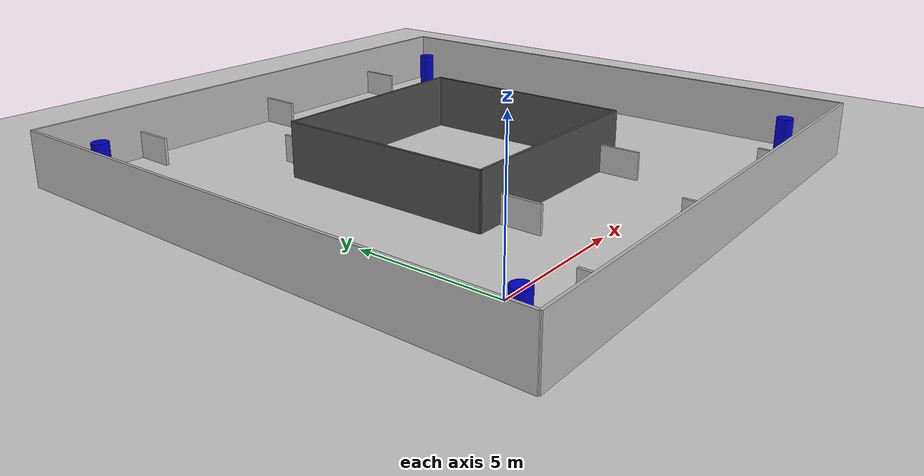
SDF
<?xml version="1.0" ?>
<sdf version="1.6">
<world name="office_loop_safe_spawn">

  <light type="directional" name="sun">
    <cast_shadows>true</cast_shadows>
    <pose>0 0 10 0 0 0</pose>
    <diffuse>0.8 0.8 0.8 1</diffuse>
    <specular>0.2 0.2 0.2 1</specular>
    <direction>-0.5 0.1 -0.9</direction>
  </light>

  <model name="ground_plane">
    <static>true</static>
    <link name="link">
      <collision name="collision">
        <geometry><plane><normal>0 0 1</normal><size>100 100</size></plane></geometry>
      </collision>
      <visual name="visual">
        <geometry><plane><normal>0 0 1</normal><size>100 100</size></plane></geometry>
        <material><ambient>0.8 0.8 0.8 1</ambient><diffuse>0.8 0.8 0.8 1</diffuse></material>
      </visual>
    </link>
  </model>

  <model name="outer_walls">
    <static>true</static>
    <pose>7 7 0 0 0 0</pose> <link name="link">
      <collision name="n"><pose>0 10 1 0 0 0</pose><geometry><box><size>20 0.1 2</size></box></geometry></collision>
      <visual name="n"><pose>0 10 1 0 0 0</pose><geometry><box><size>20 0.1 2</size></box></geometry></visual>
      <collision name="s"><pose>0 -10 1 0 0 0</pose><geometry><box><size>20 0.1 2</size></box></geometry></collision>
      <visual name="s"><pose>0 -10 1 0 0 0</pose><geometry><box><size>20 0.1 2</size></box></geometry></visual>
      <collision name="e"><pose>10 0 1 0 0 0</pose><geometry><box><size>0.1 20 2</size></box></geometry></collision>
      <visual name="e"><pose>10 0 1 0 0 0</pose><geometry><box><size>0.1 20 2</size></box></geometry></visual>
      <collision name="w"><pose>-10 0 1 0 0 0</pose><geometry><box><size>0.1 20 2</size></box></geometry></collision>
      <visual name="w"><pose>-10 0 1 0 0 0</pose><geometry><box><size>0.1 20 2</size></box></geometry></visual>
    </link>
  </model>

  <model name="inner_walls">
    <static>true</static>
    <pose>7 7 0 0 0 0</pose> <link name="link">
      <collision name="in_n"><pose>0 4 1 0 0 0</pose><geometry><box><size>8 0.1 2</size></box></geometry></collision>
      <visual name="in_n"><pose>0 4 1 0 0 0</pose><geometry><box><size>8 0.1 2</size></box></geometry><material><ambient>0.3 0.3 0.3 1</ambient></material></visual>
      <collision name="in_s"><pose>0 -4 1 0 0 0</pose><geometry><box><size>8 0.1 2</size></box></geometry></collision>
      <visual name="in_s"><pose>0 -4 1 0 0 0</pose><geometry><box><size>8 0.1 2</size></box></geometry><material><ambient>0.3 0.3 0.3 1</ambient></material></visual>
      <collision name="in_e"><pose>4 0 1 0 0 0</pose><geometry><box><size>0.1 8 2</size></box></geometry></collision>
      <visual name="in_e"><pose>4 0 1 0 0 0</pose><geometry><box><size>0.1 8 2</size></box></geometry><material><ambient>0.3 0.3 0.3 1</ambient></material></visual>
      <collision name="in_w"><pose>-4 0 1 0 0 0</pose><geometry><box><size>0.1 8 2</size></box></geometry></collision>
      <visual name="in_w"><pose>-4 0 1 0 0 0</pose><geometry><box><size>0.1 8 2</size></box></geometry><material><ambient>0.3 0.3 0.3 1</ambient></material></visual>
    </link>
  </model>

  <model name="staggered_spikes">
    <static>true</static>
    <pose>7 7 0 0 0 0</pose>
    <link name="link">
      <visual name="on1"><pose>-6 9.25 0.5 0 0 0</pose><geometry><box><size>0.1 1.5 1</size></box></geometry></visual>
      <collision name="c_on1"><pose>-6 9.25 0.5 0 0 0</pose><geometry><box><size>0.1 1.5 1</size></box></geometry></collision>

      <visual name="on2"><pose>0 9.25 0.5 0 0 0</pose><geometry><box><size>0.1 1.5 1</size></box></geometry></visual>
      <collision name="c_on2"><pose>0 9.25 0.5 0 0 0</pose><geometry><box><size>0.1 1.5 1</size></box></geometry></collision>

      <visual name="on3"><pose>6 9.25 0.5 0 0 0</pose><geometry><box><size>0.1 1.5 1</size></box></geometry></visual>
      <collision name="c_on3"><pose>6 9.25 0.5 0 0 0</pose><geometry><box><size>0.1 1.5 1</size></box></geometry></collision>

      <visual name="in1"><pose>-3 4.75 0.5 0 0 0</pose><geometry><box><size>0.1 1.5 1</size></box></geometry></visual>
      <collision name="c_in1"><pose>-3 4.75 0.5 0 0 0</pose><geometry><box><size>0.1 1.5 1</size></box></geometry></collision>

      <visual name="in2"><pose>3 4.75 0.5 0 0 0</pose><geometry><box><size>0.1 1.5 1</size></box></geometry></visual>
      <collision name="c_in2"><pose>3 4.75 0.5 0 0 0</pose><geometry><box><size>0.1 1.5 1</size></box></geometry></collision>

      <visual name="os1"><pose>-6 -9.25 0.5 0 0 0</pose><geometry><box><size>0.1 1.5 1</size></box></geometry></visual>
      <collision name="c_os1"><pose>-6 -9.25 0.5 0 0 0</pose><geometry><box><size>0.1 1.5 1</size></box></geometry></collision>

      <visual name="os2"><pose>0 -9.25 0.5 0 0 0</pose><geometry><box><size>0.1 1.5 1</size></box></geometry></visual>
      <collision name="c_os2"><pose>0 -9.25 0.5 0 0 0</pose><geometry><box><size>0.1 1.5 1</size></box></geometry></collision>

      <visual name="os3"><pose>6 -9.25 0.5 0 0 0</pose><geometry><box><size>0.1 1.5 1</size></box></geometry></visual>
      <collision name="c_os3"><pose>6 -9.25 0.5 0 0 0</pose><geometry><box><size>0.1 1.5 1</size></box></geometry></collision>

      <visual name="is1"><pose>-3 -4.75 0.5 0 0 0</pose><geometry><box><size>0.1 1.5 1</size></box></geometry></visual>
      <collision name="c_is1"><pose>-3 -4.75 0.5 0 0 0</pose><geometry><box><size>0.1 1.5 1</size></box></geometry></collision>

      <visual name="is2"><pose>3 -4.75 0.5 0 0 0</pose><geometry><box><size>0.1 1.5 1</size></box></geometry></visual>
      <collision name="c_is2"><pose>3 -4.75 0.5 0 0 0</pose><geometry><box><size>0.1 1.5 1</size></box></geometry></collision>
    </link>
  </model>

  <model name="corner_pillars">
    <static>true</static>
    <pose>7 7 0 0 0 0</pose>
    <link name="link">
      <visual name="p1"><pose>-8.5 8.5 0.75 0 0 0</pose><geometry><cylinder><radius>0.3</radius><length>1.5</length></cylinder></geometry><material><ambient>0 0 0.8 1</ambient></material></visual>
      <collision name="cp1"><pose>-8.5 8.5 0.75 0 0 0</pose><geometry><cylinder><radius>0.3</radius><length>1.5</length></cylinder></geometry></collision>

      <visual name="p2"><pose>8.5 8.5 0.75 0 0 0</pose><geometry><cylinder><radius>0.3</radius><length>1.5</length></cylinder></geometry><material><ambient>0 0 0.8 1</ambient></material></visual>
      <collision name="cp2"><pose>8.5 8.5 0.75 0 0 0</pose><geometry><cylinder><radius>0.3</radius><length>1.5</length></cylinder></geometry></collision>

      <visual name="p3"><pose>8.5 -8.5 0.75 0 0 0</pose><geometry><cylinder><radius>0.3</radius><length>1.5</length></cylinder></geometry><material><ambient>0 0 0.8 1</ambient></material></visual>
      <collision name="cp3"><pose>8.5 -8.5 0.75 0 0 0</pose><geometry><cylinder><radius>0.3</radius><length>1.5</length></cylinder></geometry></collision>

      <visual name="p4"><pose>-8.5 -8.5 0.75 0 0 0</pose><geometry><cylinder><radius>0.3</radius><length>1.5</length></cylinder></geometry><material><ambient>0 0 0.8 1</ambient></material></visual>
      <collision name="cp4"><pose>-8.5 -8.5 0.75 0 0 0</pose><geometry><cylinder><radius>0.3</radius><length>1.5</length></cylinder></geometry></collision>
    </link>
  </model>

</world>
</sdf>
